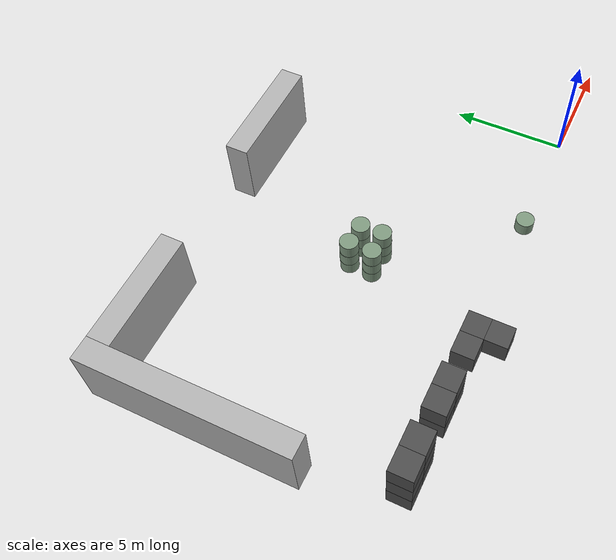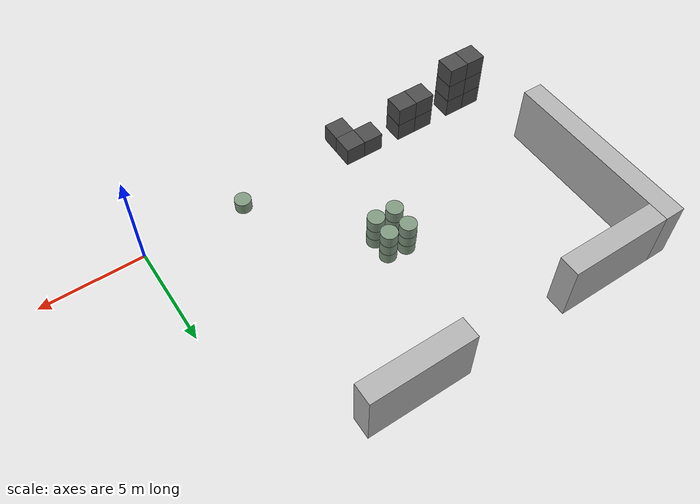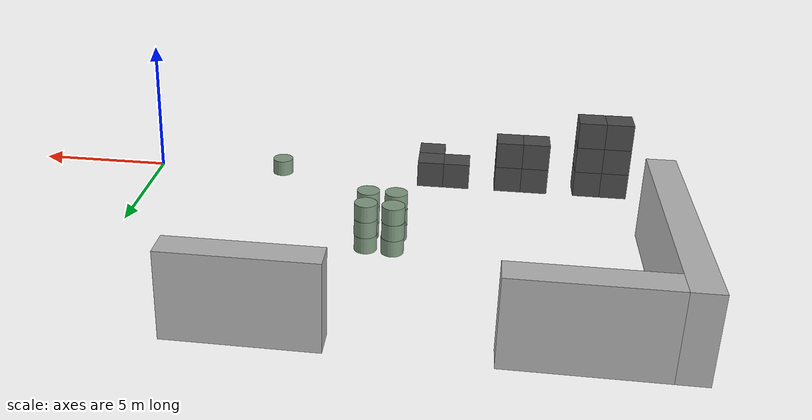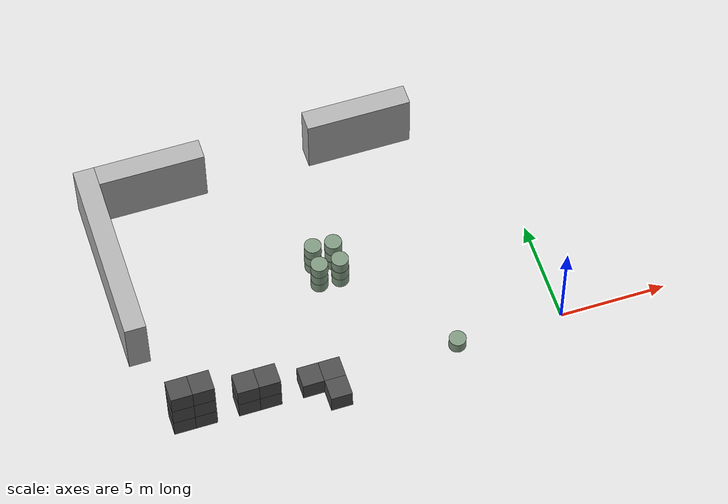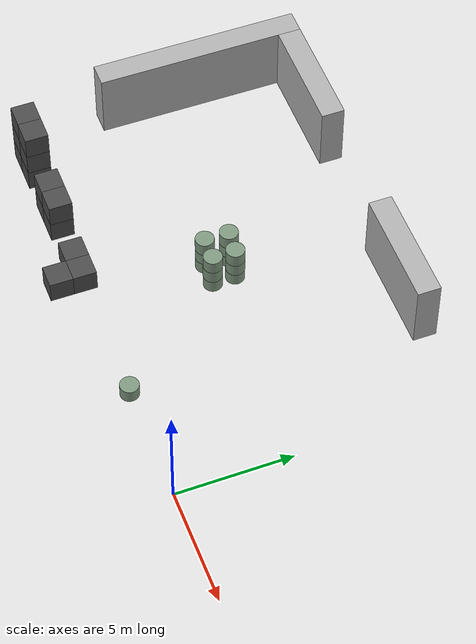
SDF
<sdf version="1.6">
 <world name="default">
  <model name="wall_1">
   <pose frame="sim_world">-19.0 8.0 1.5 0 0 0</pose>
   <static>True</static>
   <link name="wall_1_link">
    <inertial>
     <mass>100</mass>
     <inertia>
      <ixx>0.166667</ixx>
      <ixy>0</ixy>
      <ixz>0</ixz>
      <iyy>0.166667</iyy>
      <iyz>0</iyz>
      <izz>0.166667</izz>
     </inertia>
    </inertial>
    <collision name="wall_1_collision">
     <geometry><box><size>1.0 9.0 3.0</size></box></geometry>
     <max_contacts>100</max_contacts>
    </collision>
    <visual name="wall_1_visual">
     <geometry><box><size>1.0 9.0 3.0</size></box></geometry>
     <material><ambient>0.7 0.7 0.7 1</ambient><diffuse>0.7 0.7 0.7 1</diffuse></material>
    </visual>
   </link>
  </model>
  <model name="wall_9">
   <pose frame="sim_world">-16.0 12.0 1.5 0 0 0</pose>
   <static>True</static>
   <link name="wall_9_link">
    <inertial>
     <mass>100</mass>
     <inertia>
      <ixx>0.166667</ixx>
      <ixy>0</ixy>
      <ixz>0</ixz>
      <iyy>0.166667</iyy>
      <iyz>0</iyz>
      <izz>0.166667</izz>
     </inertia>
    </inertial>
    <collision name="wall_9_collision">
     <geometry><box><size>5.0 1.0 3.0</size></box></geometry>
     <max_contacts>100</max_contacts>
    </collision>
    <visual name="wall_9_visual">
     <geometry><box><size>5.0 1.0 3.0</size></box></geometry>
     <material><ambient>0.7 0.7 0.7 1</ambient><diffuse>0.7 0.7 0.7 1</diffuse></material>
    </visual>
   </link>
  </model>
  <model name="wall_10">
   <pose frame="sim_world">-6.0 12.0 1.5 0 0 0</pose>
   <static>True</static>
   <link name="wall_10_link">
    <inertial>
     <mass>100</mass>
     <inertia>
      <ixx>0.166667</ixx>
      <ixy>0</ixy>
      <ixz>0</ixz>
      <iyy>0.166667</iyy>
      <iyz>0</iyz>
      <izz>0.166667</izz>
     </inertia>
    </inertial>
    <collision name="wall_10_collision">
     <geometry><box><size>5.0 1.0 3.0</size></box></geometry>
     <max_contacts>100</max_contacts>
    </collision>
    <visual name="wall_10_visual">
     <geometry><box><size>5.0 1.0 3.0</size></box></geometry>
     <material><ambient>0.7 0.7 0.7 1</ambient><diffuse>0.7 0.7 0.7 1</diffuse></material>
    </visual>
   </link>
  </model>
  <model name="box_12">
   <pose frame="sim_world">-18.0 0.0 0.5 0 -0 0</pose>
   <static>True</static>
   <link name="box_12_link">
    <inertial>
     <mass>100</mass>
     <inertia>
      <ixx>0.166667</ixx>
      <ixy>0</ixy>
      <ixz>0</ixz>
      <iyy>0.166667</iyy>
      <iyz>0</iyz>
      <izz>0.166667</izz>
     </inertia>
    </inertial>
    <collision name="box_12_collision">
     <geometry><box><size>1.0 1.0 1.0</size></box></geometry>
     <max_contacts>100</max_contacts>
    </collision>
    <visual name="box_12_visual">
     <geometry><box><size>1.0 1.0 1.0</size></box></geometry>
     <material><ambient>0.3 0.3 0.3 1</ambient><diffuse>0.3 0.3 0.3 1</diffuse></material>
    </visual>
   </link>
  </model>
  <model name="box_13">
   <pose frame="sim_world">-18.0 0.0 1.5 0 -0 0</pose>
   <static>True</static>
   <link name="box_13_link">
    <inertial>
     <mass>100</mass>
     <inertia>
      <ixx>0.166667</ixx>
      <ixy>0</ixy>
      <ixz>0</ixz>
      <iyy>0.166667</iyy>
      <iyz>0</iyz>
      <izz>0.166667</izz>
     </inertia>
    </inertial>
    <collision name="box_13_collision">
     <geometry><box><size>1.0 1.0 1.0</size></box></geometry>
     <max_contacts>100</max_contacts>
    </collision>
    <visual name="box_13_visual">
     <geometry><box><size>1.0 1.0 1.0</size></box></geometry>
     <material><ambient>0.3 0.3 0.3 1</ambient><diffuse>0.3 0.3 0.3 1</diffuse></material>
    </visual>
   </link>
  </model>
  <model name="box_14">
   <pose frame="sim_world">-18.0 0.0 2.5 0 -0 0</pose>
   <static>True</static>
   <link name="box_14_link">
    <inertial>
     <mass>100</mass>
     <inertia>
      <ixx>0.166667</ixx>
      <ixy>0</ixy>
      <ixz>0</ixz>
      <iyy>0.166667</iyy>
      <iyz>0</iyz>
      <izz>0.166667</izz>
     </inertia>
    </inertial>
    <collision name="box_14_collision">
     <geometry><box><size>1.0 1.0 1.0</size></box></geometry>
     <max_contacts>100</max_contacts>
    </collision>
    <visual name="box_14_visual">
     <geometry><box><size>1.0 1.0 1.0</size></box></geometry>
     <material><ambient>0.3 0.3 0.3 1</ambient><diffuse>0.3 0.3 0.3 1</diffuse></material>
    </visual>
   </link>
  </model>
  <model name="box_27">
   <pose frame="sim_world">-17.0 0.0 0.5 0 -0 0</pose>
   <static>True</static>
   <link name="box_27_link">
    <inertial>
     <mass>100</mass>
     <inertia>
      <ixx>0.166667</ixx>
      <ixy>0</ixy>
      <ixz>0</ixz>
      <iyy>0.166667</iyy>
      <iyz>0</iyz>
      <izz>0.166667</izz>
     </inertia>
    </inertial>
    <collision name="box_27_collision">
     <geometry><box><size>1.0 1.0 1.0</size></box></geometry>
     <max_contacts>100</max_contacts>
    </collision>
    <visual name="box_27_visual">
     <geometry><box><size>1.0 1.0 1.0</size></box></geometry>
     <material><ambient>0.3 0.3 0.3 1</ambient><diffuse>0.3 0.3 0.3 1</diffuse></material>
    </visual>
   </link>
  </model>
  <model name="box_28">
   <pose frame="sim_world">-17.0 0.0 1.5 0 -0 0</pose>
   <static>True</static>
   <link name="box_28_link">
    <inertial>
     <mass>100</mass>
     <inertia>
      <ixx>0.166667</ixx>
      <ixy>0</ixy>
      <ixz>0</ixz>
      <iyy>0.166667</iyy>
      <iyz>0</iyz>
      <izz>0.166667</izz>
     </inertia>
    </inertial>
    <collision name="box_28_collision">
     <geometry><box><size>1.0 1.0 1.0</size></box></geometry>
     <max_contacts>100</max_contacts>
    </collision>
    <visual name="box_28_visual">
     <geometry><box><size>1.0 1.0 1.0</size></box></geometry>
     <material><ambient>0.3 0.3 0.3 1</ambient><diffuse>0.3 0.3 0.3 1</diffuse></material>
    </visual>
   </link>
  </model>
  <model name="box_29">
   <pose frame="sim_world">-17.0 0.0 2.5 0 -0 0</pose>
   <static>True</static>
   <link name="box_29_link">
    <inertial>
     <mass>100</mass>
     <inertia>
      <ixx>0.166667</ixx>
      <ixy>0</ixy>
      <ixz>0</ixz>
      <iyy>0.166667</iyy>
      <iyz>0</iyz>
      <izz>0.166667</izz>
     </inertia>
    </inertial>
    <collision name="box_29_collision">
     <geometry><box><size>1.0 1.0 1.0</size></box></geometry>
     <max_contacts>100</max_contacts>
    </collision>
    <visual name="box_29_visual">
     <geometry><box><size>1.0 1.0 1.0</size></box></geometry>
     <material><ambient>0.3 0.3 0.3 1</ambient><diffuse>0.3 0.3 0.3 1</diffuse></material>
    </visual>
   </link>
  </model>
  <model name="box_38">
   <pose frame="sim_world">-15.0 0.0 0.5 0 -0 0</pose>
   <static>True</static>
   <link name="box_38_link">
    <inertial>
     <mass>100</mass>
     <inertia>
      <ixx>0.166667</ixx>
      <ixy>0</ixy>
      <ixz>0</ixz>
      <iyy>0.166667</iyy>
      <iyz>0</iyz>
      <izz>0.166667</izz>
     </inertia>
    </inertial>
    <collision name="box_38_collision">
     <geometry><box><size>1.0 1.0 1.0</size></box></geometry>
     <max_contacts>100</max_contacts>
    </collision>
    <visual name="box_38_visual">
     <geometry><box><size>1.0 1.0 1.0</size></box></geometry>
     <material><ambient>0.3 0.3 0.3 1</ambient><diffuse>0.3 0.3 0.3 1</diffuse></material>
    </visual>
   </link>
  </model>
  <model name="box_39">
   <pose frame="sim_world">-15.0 0.0 1.5 0 -0 0</pose>
   <static>True</static>
   <link name="box_39_link">
    <inertial>
     <mass>100</mass>
     <inertia>
      <ixx>0.166667</ixx>
      <ixy>0</ixy>
      <ixz>0</ixz>
      <iyy>0.166667</iyy>
      <iyz>0</iyz>
      <izz>0.166667</izz>
     </inertia>
    </inertial>
    <collision name="box_39_collision">
     <geometry><box><size>1.0 1.0 1.0</size></box></geometry>
     <max_contacts>100</max_contacts>
    </collision>
    <visual name="box_39_visual">
     <geometry><box><size>1.0 1.0 1.0</size></box></geometry>
     <material><ambient>0.3 0.3 0.3 1</ambient><diffuse>0.3 0.3 0.3 1</diffuse></material>
    </visual>
   </link>
  </model>
  <model name="box_48">
   <pose frame="sim_world">-14.0 0.0 0.5 0 -0 0</pose>
   <static>True</static>
   <link name="box_48_link">
    <inertial>
     <mass>100</mass>
     <inertia>
      <ixx>0.166667</ixx>
      <ixy>0</ixy>
      <ixz>0</ixz>
      <iyy>0.166667</iyy>
      <iyz>0</iyz>
      <izz>0.166667</izz>
     </inertia>
    </inertial>
    <collision name="box_48_collision">
     <geometry><box><size>1.0 1.0 1.0</size></box></geometry>
     <max_contacts>100</max_contacts>
    </collision>
    <visual name="box_48_visual">
     <geometry><box><size>1.0 1.0 1.0</size></box></geometry>
     <material><ambient>0.3 0.3 0.3 1</ambient><diffuse>0.3 0.3 0.3 1</diffuse></material>
    </visual>
   </link>
  </model>
  <model name="box_49">
   <pose frame="sim_world">-14.0 0.0 1.5 0 -0 0</pose>
   <static>True</static>
   <link name="box_49_link">
    <inertial>
     <mass>100</mass>
     <inertia>
      <ixx>0.166667</ixx>
      <ixy>0</ixy>
      <ixz>0</ixz>
      <iyy>0.166667</iyy>
      <iyz>0</iyz>
      <izz>0.166667</izz>
     </inertia>
    </inertial>
    <collision name="box_49_collision">
     <geometry><box><size>1.0 1.0 1.0</size></box></geometry>
     <max_contacts>100</max_contacts>
    </collision>
    <visual name="box_49_visual">
     <geometry><box><size>1.0 1.0 1.0</size></box></geometry>
     <material><ambient>0.3 0.3 0.3 1</ambient><diffuse>0.3 0.3 0.3 1</diffuse></material>
    </visual>
   </link>
  </model>
  <model name="box_54">
   <pose frame="sim_world">-12.0 0.0 0.5 0 -0 0</pose>
   <static>True</static>
   <link name="box_54_link">
    <inertial>
     <mass>100</mass>
     <inertia>
      <ixx>0.166667</ixx>
      <ixy>0</ixy>
      <ixz>0</ixz>
      <iyy>0.166667</iyy>
      <iyz>0</iyz>
      <izz>0.166667</izz>
     </inertia>
    </inertial>
    <collision name="box_54_collision">
     <geometry><box><size>1.0 1.0 1.0</size></box></geometry>
     <max_contacts>100</max_contacts>
    </collision>
    <visual name="box_54_visual">
     <geometry><box><size>1.0 1.0 1.0</size></box></geometry>
     <material><ambient>0.3 0.3 0.3 1</ambient><diffuse>0.3 0.3 0.3 1</diffuse></material>
    </visual>
   </link>
  </model>
  <model name="box_58">
   <pose frame="sim_world">-11.0 -1.0 0.5 0 -0 0</pose>
   <static>True</static>
   <link name="box_58_link">
    <inertial>
     <mass>100</mass>
     <inertia>
      <ixx>0.166667</ixx>
      <ixy>0</ixy>
      <ixz>0</ixz>
      <iyy>0.166667</iyy>
      <iyz>0</iyz>
      <izz>0.166667</izz>
     </inertia>
    </inertial>
    <collision name="box_58_collision">
     <geometry><box><size>1.0 1.0 1.0</size></box></geometry>
     <max_contacts>100</max_contacts>
    </collision>
    <visual name="box_58_visual">
     <geometry><box><size>1.0 1.0 1.0</size></box></geometry>
     <material><ambient>0.3 0.3 0.3 1</ambient><diffuse>0.3 0.3 0.3 1</diffuse></material>
    </visual>
   </link>
  </model>
  <model name="box_59">
   <pose frame="sim_world">-11.0 0.0 0.5 0 -0 0</pose>
   <static>True</static>
   <link name="box_59_link">
    <inertial>
     <mass>100</mass>
     <inertia>
      <ixx>0.166667</ixx>
      <ixy>0</ixy>
      <ixz>0</ixz>
      <iyy>0.166667</iyy>
      <iyz>0</iyz>
      <izz>0.166667</izz>
     </inertia>
    </inertial>
    <collision name="box_59_collision">
     <geometry><box><size>1.0 1.0 1.0</size></box></geometry>
     <max_contacts>100</max_contacts>
    </collision>
    <visual name="box_59_visual">
     <geometry><box><size>1.0 1.0 1.0</size></box></geometry>
     <material><ambient>0.3 0.3 0.3 1</ambient><diffuse>0.3 0.3 0.3 1</diffuse></material>
    </visual>
   </link>
  </model>
  <model name="cylinder_42">
   <pose frame="sim_world">-10.0202933208 5.0030478125 0.3 0 -0 0</pose>
   <static>True</static>
   <link name="cylinder_42_link">
    <inertial>
     <mass>100</mass>
     <inertia><ixx>0.145833</ixx><ixy>0</ixy><ixz>0</ixz><iyy>0.145833</iyy><iyz>0</iyz><izz>0.125</izz></inertia>
    </inertial>
    <collision name="cylinder_42_collision">
     <geometry><cylinder><length>0.6</length><radius>0.4</radius></cylinder></geometry>
     <max_contacts>100</max_contacts>
    </collision>
    <visual name="cylinder_42_visual">
     <geometry><cylinder><length>0.6</length><radius>0.4</radius></cylinder></geometry>
     <material><ambient>0.5 0.6 0.5 1</ambient><diffuse>0.5 0.6 0.5 1</diffuse></material>
    </visual>
   </link>
  </model>
  <model name="cylinder_43">
   <pose frame="sim_world">-10.0160368584 5.00052435981 0.9 0 -0 0</pose>
   <static>True</static>
   <link name="cylinder_43_link">
    <inertial>
     <mass>100</mass>
     <inertia><ixx>0.145833</ixx><ixy>0</ixy><ixz>0</ixz><iyy>0.145833</iyy><iyz>0</iyz><izz>0.125</izz></inertia>
    </inertial>
    <collision name="cylinder_43_collision">
     <geometry><cylinder><length>0.6</length><radius>0.4</radius></cylinder></geometry>
     <max_contacts>100</max_contacts>
    </collision>
    <visual name="cylinder_43_visual">
     <geometry><cylinder><length>0.6</length><radius>0.4</radius></cylinder></geometry>
     <material><ambient>0.5 0.6 0.5 1</ambient><diffuse>0.5 0.6 0.5 1</diffuse></material>
    </visual>
   </link>
  </model>
  <model name="cylinder_44">
   <pose frame="sim_world">-10.0080171585 4.98920138637 1.5 0 -0 0</pose>
   <static>True</static>
   <link name="cylinder_44_link">
    <inertial>
     <mass>100</mass>
     <inertia><ixx>0.145833</ixx><ixy>0</ixy><ixz>0</ixz><iyy>0.145833</iyy><iyz>0</iyz><izz>0.125</izz></inertia>
    </inertial>
    <collision name="cylinder_44_collision">
     <geometry><cylinder><length>0.6</length><radius>0.4</radius></cylinder></geometry>
     <max_contacts>100</max_contacts>
    </collision>
    <visual name="cylinder_44_visual">
     <geometry><cylinder><length>0.6</length><radius>0.4</radius></cylinder></geometry>
     <material><ambient>0.5 0.6 0.5 1</ambient><diffuse>0.5 0.6 0.5 1</diffuse></material>
    </visual>
   </link>
  </model>
  <model name="cylinder_45">
   <pose frame="sim_world">-9.99338973556 6.03151803693 0.3 0 -0 0</pose>
   <static>True</static>
   <link name="cylinder_45_link">
    <inertial>
     <mass>100</mass>
     <inertia><ixx>0.145833</ixx><ixy>0</ixy><ixz>0</ixz><iyy>0.145833</iyy><iyz>0</iyz><izz>0.125</izz></inertia>
    </inertial>
    <collision name="cylinder_45_collision">
     <geometry><cylinder><length>0.6</length><radius>0.4</radius></cylinder></geometry>
     <max_contacts>100</max_contacts>
    </collision>
    <visual name="cylinder_45_visual">
     <geometry><cylinder><length>0.6</length><radius>0.4</radius></cylinder></geometry>
     <material><ambient>0.5 0.6 0.5 1</ambient><diffuse>0.5 0.6 0.5 1</diffuse></material>
    </visual>
   </link>
  </model>
  <model name="cylinder_46">
   <pose frame="sim_world">-10.0088004719 6.03712128335 0.9 0 -0 0</pose>
   <static>True</static>
   <link name="cylinder_46_link">
    <inertial>
     <mass>100</mass>
     <inertia><ixx>0.145833</ixx><ixy>0</ixy><ixz>0</ixz><iyy>0.145833</iyy><iyz>0</iyz><izz>0.125</izz></inertia>
    </inertial>
    <collision name="cylinder_46_collision">
     <geometry><cylinder><length>0.6</length><radius>0.4</radius></cylinder></geometry>
     <max_contacts>100</max_contacts>
    </collision>
    <visual name="cylinder_46_visual">
     <geometry><cylinder><length>0.6</length><radius>0.4</radius></cylinder></geometry>
     <material><ambient>0.5 0.6 0.5 1</ambient><diffuse>0.5 0.6 0.5 1</diffuse></material>
    </visual>
   </link>
  </model>
  <model name="cylinder_47">
   <pose frame="sim_world">-9.99636193501 6.03040588928 1.5 0 -0 0</pose>
   <static>True</static>
   <link name="cylinder_47_link">
    <inertial>
     <mass>100</mass>
     <inertia><ixx>0.145833</ixx><ixy>0</ixy><ixz>0</ixz><iyy>0.145833</iyy><iyz>0</iyz><izz>0.125</izz></inertia>
    </inertial>
    <collision name="cylinder_47_collision">
     <geometry><cylinder><length>0.6</length><radius>0.4</radius></cylinder></geometry>
     <max_contacts>100</max_contacts>
    </collision>
    <visual name="cylinder_47_visual">
     <geometry><cylinder><length>0.6</length><radius>0.4</radius></cylinder></geometry>
     <material><ambient>0.5 0.6 0.5 1</ambient><diffuse>0.5 0.6 0.5 1</diffuse></material>
    </visual>
   </link>
  </model>
  <model name="cylinder_48">
   <pose frame="sim_world">-9.02334739979 4.97692593154 0.3 0 -0 0</pose>
   <static>True</static>
   <link name="cylinder_48_link">
    <inertial>
     <mass>100</mass>
     <inertia><ixx>0.145833</ixx><ixy>0</ixy><ixz>0</ixz><iyy>0.145833</iyy><iyz>0</iyz><izz>0.125</izz></inertia>
    </inertial>
    <collision name="cylinder_48_collision">
     <geometry><cylinder><length>0.6</length><radius>0.4</radius></cylinder></geometry>
     <max_contacts>100</max_contacts>
    </collision>
    <visual name="cylinder_48_visual">
     <geometry><cylinder><length>0.6</length><radius>0.4</radius></cylinder></geometry>
     <material><ambient>0.5 0.6 0.5 1</ambient><diffuse>0.5 0.6 0.5 1</diffuse></material>
    </visual>
   </link>
  </model>
  <model name="cylinder_49">
   <pose frame="sim_world">-9.02772871434 4.96734218823 0.9 0 -0 0</pose>
   <static>True</static>
   <link name="cylinder_49_link">
    <inertial>
     <mass>100</mass>
     <inertia><ixx>0.145833</ixx><ixy>0</ixy><ixz>0</ixz><iyy>0.145833</iyy><iyz>0</iyz><izz>0.125</izz></inertia>
    </inertial>
    <collision name="cylinder_49_collision">
     <geometry><cylinder><length>0.6</length><radius>0.4</radius></cylinder></geometry>
     <max_contacts>100</max_contacts>
    </collision>
    <visual name="cylinder_49_visual">
     <geometry><cylinder><length>0.6</length><radius>0.4</radius></cylinder></geometry>
     <material><ambient>0.5 0.6 0.5 1</ambient><diffuse>0.5 0.6 0.5 1</diffuse></material>
    </visual>
   </link>
  </model>
  <model name="cylinder_50">
   <pose frame="sim_world">-9.02396796643 4.97896215638 1.5 0 -0 0</pose>
   <static>True</static>
   <link name="cylinder_50_link">
    <inertial>
     <mass>100</mass>
     <inertia><ixx>0.145833</ixx><ixy>0</ixy><ixz>0</ixz><iyy>0.145833</iyy><iyz>0</iyz><izz>0.125</izz></inertia>
    </inertial>
    <collision name="cylinder_50_collision">
     <geometry><cylinder><length>0.6</length><radius>0.4</radius></cylinder></geometry>
     <max_contacts>100</max_contacts>
    </collision>
    <visual name="cylinder_50_visual">
     <geometry><cylinder><length>0.6</length><radius>0.4</radius></cylinder></geometry>
     <material><ambient>0.5 0.6 0.5 1</ambient><diffuse>0.5 0.6 0.5 1</diffuse></material>
    </visual>
   </link>
  </model>
  <model name="cylinder_51">
   <pose frame="sim_world">-9.05182866777 5.95392791205 0.3 0 -0 0</pose>
   <static>True</static>
   <link name="cylinder_51_link">
    <inertial>
     <mass>100</mass>
     <inertia><ixx>0.145833</ixx><ixy>0</ixy><ixz>0</ixz><iyy>0.145833</iyy><iyz>0</iyz><izz>0.125</izz></inertia>
    </inertial>
    <collision name="cylinder_51_collision">
     <geometry><cylinder><length>0.6</length><radius>0.4</radius></cylinder></geometry>
     <max_contacts>100</max_contacts>
    </collision>
    <visual name="cylinder_51_visual">
     <geometry><cylinder><length>0.6</length><radius>0.4</radius></cylinder></geometry>
     <material><ambient>0.5 0.6 0.5 1</ambient><diffuse>0.5 0.6 0.5 1</diffuse></material>
    </visual>
   </link>
  </model>
  <model name="cylinder_52">
   <pose frame="sim_world">-9.04150532906 5.95996382125 0.9 0 -0 0</pose>
   <static>True</static>
   <link name="cylinder_52_link">
    <inertial>
     <mass>100</mass>
     <inertia><ixx>0.145833</ixx><ixy>0</ixy><ixz>0</ixz><iyy>0.145833</iyy><iyz>0</iyz><izz>0.125</izz></inertia>
    </inertial>
    <collision name="cylinder_52_collision">
     <geometry><cylinder><length>0.6</length><radius>0.4</radius></cylinder></geometry>
     <max_contacts>100</max_contacts>
    </collision>
    <visual name="cylinder_52_visual">
     <geometry><cylinder><length>0.6</length><radius>0.4</radius></cylinder></geometry>
     <material><ambient>0.5 0.6 0.5 1</ambient><diffuse>0.5 0.6 0.5 1</diffuse></material>
    </visual>
   </link>
  </model>
  <model name="cylinder_53">
   <pose frame="sim_world">-9.04081474595 5.95554203454 1.5 0 -0 0</pose>
   <static>True</static>
   <link name="cylinder_53_link">
    <inertial>
     <mass>100</mass>
     <inertia><ixx>0.145833</ixx><ixy>0</ixy><ixz>0</ixz><iyy>0.145833</iyy><iyz>0</iyz><izz>0.125</izz></inertia>
    </inertial>
    <collision name="cylinder_53_collision">
     <geometry><cylinder><length>0.6</length><radius>0.4</radius></cylinder></geometry>
     <max_contacts>100</max_contacts>
    </collision>
    <visual name="cylinder_53_visual">
     <geometry><cylinder><length>0.6</length><radius>0.4</radius></cylinder></geometry>
     <material><ambient>0.5 0.6 0.5 1</ambient><diffuse>0.5 0.6 0.5 1</diffuse></material>
    </visual>
   </link>
  </model>
  <model name="cylinder_69">
   <pose frame="sim_world">-5.03713192794 -0.0112006850342 0.3 0 -0 0</pose>
   <static>True</static>
   <link name="cylinder_69_link">
    <inertial>
     <mass>100</mass>
     <inertia><ixx>0.145833</ixx><ixy>0</ixy><ixz>0</ixz><iyy>0.145833</iyy><iyz>0</iyz><izz>0.125</izz></inertia>
    </inertial>
    <collision name="cylinder_69_collision">
     <geometry><cylinder><length>0.6</length><radius>0.4</radius></cylinder></geometry>
     <max_contacts>100</max_contacts>
    </collision>
    <visual name="cylinder_69_visual">
     <geometry><cylinder><length>0.6</length><radius>0.4</radius></cylinder></geometry>
     <material><ambient>0.5 0.6 0.5 1</ambient><diffuse>0.5 0.6 0.5 1</diffuse></material>
    </visual>
   </link>
  </model>
  <model name="ground_plane"><link name="ground_plane"/></model>
 </world>
</sdf>
